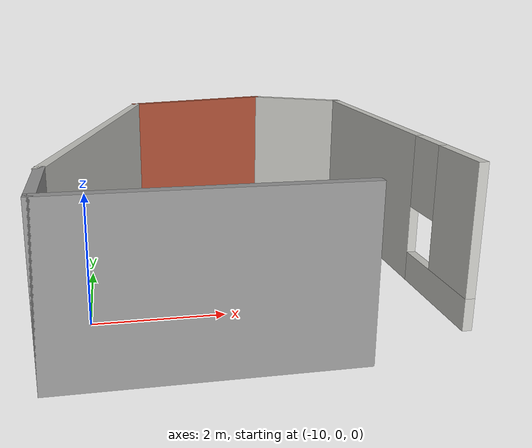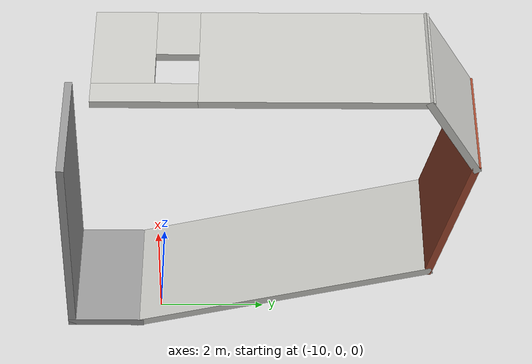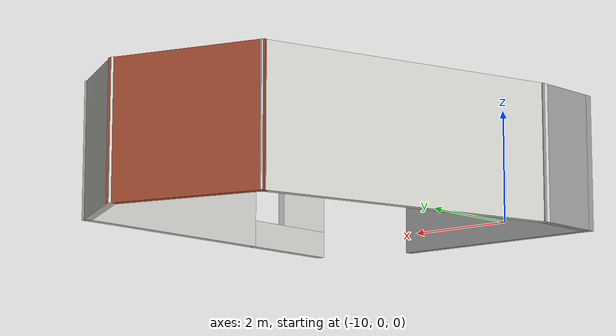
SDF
<?xml version='1.0'?>
<sdf version='1.6'>
  <model name='Building_complex_env'>
    <pose frame=''>-7.59014 2.09288 0 0 -0 0</pose>
    <link name='Wall_0'>
      <collision name='Wall_0_Collision'>
        <geometry>
          <box>
            <size>4.25 0.15 2.5</size>
          </box>
        </geometry>
        <pose frame=''>0 0 1.25 0 -0 0</pose>
      </collision>
      <visual name='Wall_0_Visual'>
        <pose frame=''>0 0 1.25 0 -0 0</pose>
        <geometry>
          <box>
            <size>4.25 0.15 2.5</size>
          </box>
        </geometry>
        <material>
          <script>
            <uri>file://media/materials/scripts/gazebo.material</uri>
            <name>Gazebo/Grey</name>
          </script>
          <ambient>1 1 1 1</ambient>
        </material>
        <meta>
          <layer>0</layer>
        </meta>
      </visual>
      <pose frame=''>-0.889861 -3.88288 0 0 -0 0</pose>
    </link>
    <link name='Wall_2'>
      <collision name='Wall_2_Collision'>
        <geometry>
          <box>
            <size>1.5 0.15 2.5</size>
          </box>
        </geometry>
        <pose frame=''>0 0 1.25 0 -0 0</pose>
      </collision>
      <visual name='Wall_2_Visual'>
        <pose frame=''>0 0 1.25 0 -0 0</pose>
        <geometry>
          <box>
            <size>1.5 0.15 2.5</size>
          </box>
        </geometry>
        <material>
          <script>
            <uri>file://media/materials/scripts/gazebo.material</uri>
            <name>Gazebo/Grey</name>
          </script>
          <ambient>1 1 1 1</ambient>
        </material>
        <meta>
          <layer>0</layer>
        </meta>
      </visual>
      <pose frame=''>-2.93986 -3.20788 0 0 -0 1.5708</pose>
    </link>
    <link name='Wall_3'>
      <collision name='Wall_3_Collision'>
        <geometry>
          <box>
            <size>6 0.15 2.5</size>
          </box>
        </geometry>
        <pose frame=''>0 0 1.25 0 -0 0</pose>
      </collision>
      <visual name='Wall_3_Visual'>
        <pose frame=''>0 0 1.25 0 -0 0</pose>
        <geometry>
          <box>
            <size>6 0.15 2.5</size>
          </box>
        </geometry>
        <material>
          <script>
            <uri>file://media/materials/scripts/gazebo.material</uri>
            <name>Gazebo/CeilingTiled</name>
          </script>
          <ambient>0.996078 0.47451 0.0196078 1</ambient>
        </material>
        <meta>
          <layer>0</layer>
        </meta>
      </visual>
      <pose frame=''>-2.18282 0.292457 0 0 -0 1.309</pose>
    </link>
    <link name='Wall_4'>
      <collision name='Wall_4_Collision'>
        <geometry>
          <box>
            <size>3 0.15 2.5</size>
          </box>
        </geometry>
        <pose frame=''>0 0 1.25 0 -0 0</pose>
      </collision>
      <visual name='Wall_4_Visual'>
        <pose frame=''>0 0 1.25 0 -0 0</pose>
        <geometry>
          <box>
            <size>3 0.15 2.5</size>
          </box>
        </geometry>
        <material>
          <script>
            <uri>file://media/materials/scripts/gazebo.material</uri>
            <name>Gazebo/Bricks</name>
          </script>
          <ambient>0.760784 0.662745 0.627451 1</ambient>
        </material>
        <meta>
          <layer>0</layer>
        </meta>
      </visual>
      <pose frame=''>-0.049326 3.48661 0 0 -0 0.261799</pose>
    </link>
    <link name='Wall_5'>
      <collision name='Wall_5_Collision'>
        <geometry>
          <box>
            <size>2 0.15 2.5</size>
          </box>
        </geometry>
        <pose frame=''>0 0 1.25 0 -0 0</pose>
      </collision>
      <visual name='Wall_5_Visual'>
        <pose frame=''>0 0 1.25 0 -0 0</pose>
        <geometry>
          <box>
            <size>2 0.15 2.5</size>
          </box>
        </geometry>
        <material>
          <script>
            <uri>file://media/materials/scripts/gazebo.material</uri>
            <name>Gazebo/CeilingTiled</name>
          </script>
          <ambient>1 0.764706 0.305882 1</ambient>
        </material>
        <meta>
          <layer>0</layer>
        </meta>
      </visual>
      <pose frame=''>2.12819 3.39292 0 0 0 -0.523599</pose>
    </link>
    <link name='Wall_6'>
      <pose frame=''>2.92927 -0.119576 0 0 0 -1.5708</pose>
      <visual name='Wall_6_Visual_0'>
        <pose frame=''>-0.980489 0 1.25 0 -0 0</pose>
        <geometry>
          <box>
            <size>4.28902 0.15 2.5</size>
          </box>
        </geometry>
        <material>
          <script>
            <uri>file://media/materials/scripts/gazebo.material</uri>
            <name>Gazebo/CeilingTiled</name>
          </script>
          <ambient>1 0.764706 0.305882 1</ambient>
        </material>
        <meta>
          <layer>0</layer>
        </meta>
      </visual>
      <collision name='Wall_6_Collision_0'>
        <geometry>
          <box>
            <size>4.28902 0.15 2.5</size>
          </box>
        </geometry>
        <pose frame=''>-0.980489 0 1.25 0 -0 0</pose>
      </collision>
      <visual name='Wall_6_Visual_1'>
        <pose frame=''>2.14451 0 0.25 0 -0 0</pose>
        <geometry>
          <box>
            <size>1.96098 0.15 0.5</size>
          </box>
        </geometry>
        <material>
          <script>
            <uri>file://media/materials/scripts/gazebo.material</uri>
            <name>Gazebo/CeilingTiled</name>
          </script>
          <ambient>1 0.764706 0.305882 1</ambient>
        </material>
        <meta>
          <layer>0</layer>
        </meta>
      </visual>
      <collision name='Wall_6_Collision_1'>
        <geometry>
          <box>
            <size>1.96098 0.15 0.5</size>
          </box>
        </geometry>
        <pose frame=''>2.14451 0 0.25 0 -0 0</pose>
      </collision>
      <visual name='Wall_6_Visual_2'>
        <pose frame=''>2.54451 0 1.5 0 -0 0</pose>
        <geometry>
          <box>
            <size>1.16098 0.15 2</size>
          </box>
        </geometry>
        <material>
          <script>
            <uri>file://media/materials/scripts/gazebo.material</uri>
            <name>Gazebo/CeilingTiled</name>
          </script>
          <ambient>1 0.764706 0.305882 1</ambient>
        </material>
        <meta>
          <layer>0</layer>
        </meta>
      </visual>
      <collision name='Wall_6_Collision_2'>
        <geometry>
          <box>
            <size>1.16098 0.15 2</size>
          </box>
        </geometry>
        <pose frame=''>2.54451 0 1.5 0 -0 0</pose>
      </collision>
      <visual name='Wall_6_Visual_3'>
        <pose frame=''>1.56402 0 1.9 0 -0 0</pose>
        <geometry>
          <box>
            <size>0.8 0.15 1.2</size>
          </box>
        </geometry>
        <material>
          <script>
            <uri>file://media/materials/scripts/gazebo.material</uri>
            <name>Gazebo/CeilingTiled</name>
          </script>
          <ambient>1 0.764706 0.305882 1</ambient>
        </material>
        <meta>
          <layer>0</layer>
        </meta>
      </visual>
      <collision name='Wall_6_Collision_3'>
        <geometry>
          <box>
            <size>0.8 0.15 1.2</size>
          </box>
        </geometry>
        <pose frame=''>1.56402 0 1.9 0 -0 0</pose>
      </collision>
    </link>
    <static>1</static>
  </model>
</sdf>
